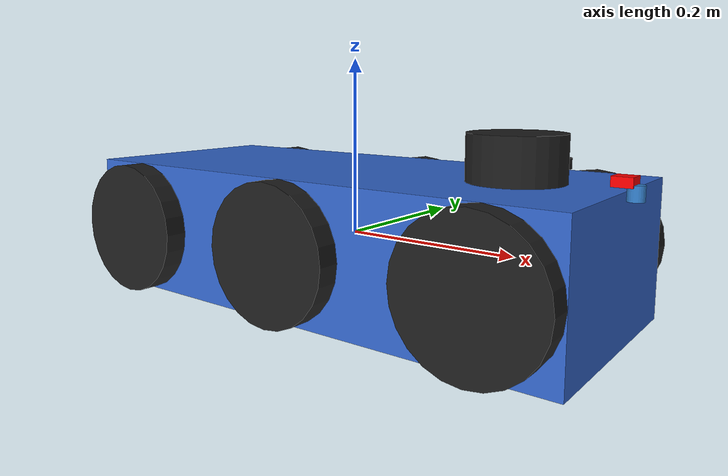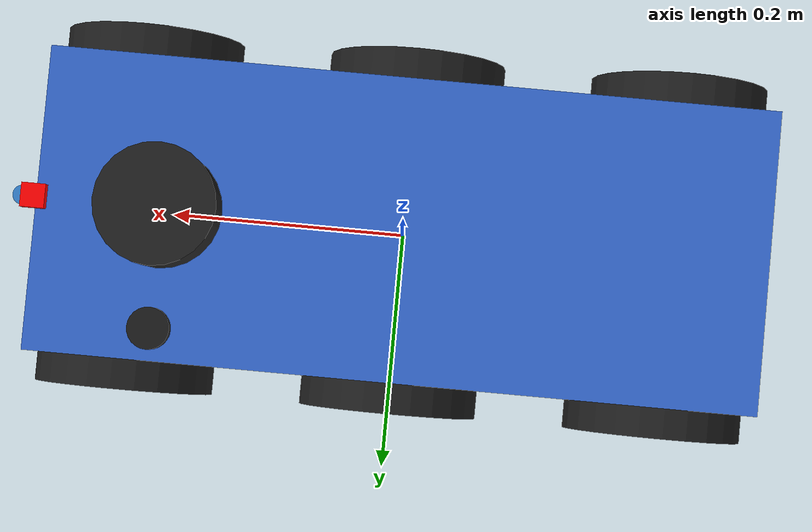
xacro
<?xml version="1.0"?>
<robot name="solara_rover" xmlns:xacro="http://ros.org/wiki/xacro">

  <xacro:property name="front_wheel_x" value="0.2286"/>
  <xacro:property name="rear_wheel_x" value="-0.2286"/>

  <xacro:include filename="$(find rover_description)/urdf/chassis.xacro"/>
  <xacro:include filename="$(find rover_description)/urdf/wheels.xacro"/>
  <xacro:include filename="$(find rover_description)/urdf/sensors/imu.xacro"/>
  <xacro:include filename="$(find rover_description)/urdf/sensors/ultrasonic.xacro"/>
  <xacro:include filename="$(find rover_description)/urdf/sensors/lidar.xacro"/>
  <xacro:include filename="$(find rover_description)/urdf/sensors/gps.xacro"/>

  <!-- Wheels -->
  <xacro:driven_wheel prefix="middle_left" reflect_y="1"/>
  <xacro:driven_wheel prefix="middle_right" reflect_y="-1"/>

  <xacro:passive_wheel prefix="front_left" reflect_y="1" x_position="${front_wheel_x}"/>
  <xacro:passive_wheel prefix="front_right" reflect_y="-1" x_position="${front_wheel_x}"/>
  <xacro:passive_wheel prefix="rear_left" reflect_y="1" x_position="${rear_wheel_x}"/>
  <xacro:passive_wheel prefix="rear_right" reflect_y="-1" x_position="${rear_wheel_x}"/>

  <!-- Sensors (frames only) -->
  <xacro:imu_sensor parent_link="chassis_link">
    <origin xyz="0.3048 0 0.0862" rpy="0 0 0"/>
  </xacro:imu_sensor>

  <xacro:ultrasonic_sensor parent_link="chassis_link">
    <origin xyz="0.3148 0 0.0762" rpy="0 0 0"/>
  </xacro:ultrasonic_sensor>

  <xacro:gps_sensor parent_link="chassis_link">
    <origin xyz="0.2 0.1 0.0862" rpy="0 0 0"/>
  </xacro:gps_sensor>

  <xacro:lidar_sensor parent_link="chassis_link">
    <origin xyz="0.2 0 0.1" rpy="0 0 0"/>
  </xacro:lidar_sensor>

</robot>

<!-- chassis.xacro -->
<robot xmlns:xacro="http://www.ros.org/wiki/xacro">

    <!-- Chassis dimensions in meters -->
    <xacro:property name="chassis_length" value="0.6096"/>  <!-- 24 inches -->
    <xacro:property name="chassis_width" value="0.254"/>    <!-- 10 inches -->
    <xacro:property name="chassis_height" value="0.1524"/>  <!-- 6 inches -->
    <xacro:property name="chassis_mass" value="5.0"/>       <!-- kg, adjust as needed -->

    <link name="chassis_link">
        <!-- Visual representation -->
        <visual>
            <origin xyz="0 0 0" rpy="0 0 0"/>
            <geometry>
                <box size="${chassis_length} ${chassis_width} ${chassis_height}"/>
            </geometry>
            <material name="chassis_blue">
                <color rgba="0.2 0.4 0.8 1.0"/>
            </material>
        </visual>

        <!-- Collision representation -->
        <collision>
            <origin xyz="0 0 0" rpy="0 0 0"/>
            <geometry>
                <box size="${chassis_length} ${chassis_width} ${chassis_height}"/>
            </geometry>
        </collision>

        <!-- Inertial properties -->
        <inertial>
            <origin xyz="0 0 0" rpy="0 0 0"/>
            <mass value="${chassis_mass}"/>
            <inertia
                ixx="${(1/12) * chassis_mass * (chassis_width*chassis_width + chassis_height*chassis_height)}"
                ixy="0.0"
                ixz="0.0"
                iyy="${(1/12) * chassis_mass * (chassis_length*chassis_length + chassis_height*chassis_height)}"
                iyz="0.0"
                izz="${(1/12) * chassis_mass * (chassis_length*chassis_length + chassis_width*chassis_width)}"/>
        </inertial>
    </link>

</robot>

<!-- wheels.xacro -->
<robot xmlns:xacro="http://ros.org/wiki/xacro">

  <!-- Driven wheel macro (middle wheels with motors) -->
<xacro:macro name="driven_wheel" params="prefix reflect_y">
    <!-- #defining pi -->
    <xacro:property name="pi" value="3.141592653589793"/>
    <link name="${prefix}_wheel_link">
      <visual>
        <origin xyz="0 0 0" rpy="${pi/2} 0 0"/>
        <geometry>
          <cylinder radius="0.0762" length="0.0508"/>
        </geometry>
        <material name="black"/>
      </visual>

      <collision>
        <origin xyz="0 0 0" rpy="${pi/2} 0 0"/>
        <geometry>
          <cylinder radius="0.0762" length="0.0508"/>
        </geometry>
      </collision>

      <inertial>
        <mass value="1.5"/>
        <origin xyz="0 0 0" rpy="${pi/2} 0 0"/>
        <inertia
          ixx="${(1/12) * 1.5 * (3*0.0762*0.0762 + 0.0508*0.0508)}"
          iyy="${(1/12) * 1.5 * (3*0.0762*0.0762 + 0.0508*0.0508)}"
          izz="${0.5 * 1.5 * 0.0762*0.0762}"
          ixy="0.0" ixz="0.0" iyz="0.0"/>
      </inertial>
    </link>

    <joint name="${prefix}_wheel_joint" type="continuous">
      <parent link="chassis_link"/>
      <child link="${prefix}_wheel_link"/>
      <origin xyz="0 ${reflect_y * 0.127} 0" rpy="0 0 0"/>
      <axis xyz="0 1 0"/>
      <dynamics damping="0.2" friction="0.1"/>
    </joint>

  </xacro:macro>

  <!-- Passive wheel macro (front and rear, just rolls) -->
  <xacro:macro name="passive_wheel" params="prefix reflect_y x_position">

    <link name="${prefix}_wheel_link">
      <visual>
        <origin xyz="0 0 0" rpy="${pi/2} 0 0"/>
        <geometry>
          <cylinder radius="0.0762" length="0.0508"/>
        </geometry>
        <material name="black"/>
      </visual>

      <collision>
        <origin xyz="0 0 0" rpy="${pi/2} 0 0"/>
        <geometry>
          <cylinder radius="0.0762" length="0.0508"/>
        </geometry>
      </collision>

      <inertial>
        <mass value="1.0"/>
        <origin xyz="0 0 0" rpy="${pi/2} 0 0"/>
        <inertia
          ixx="${(1/12) * 1.0 * (3*0.0762*0.0762 + 0.0508*0.0508)}"
          iyy="${(1/12) * 1.0 * (3*0.0762*0.0762 + 0.0508*0.0508)}"
          izz="${0.5 * 1.0 * 0.0762*0.0762}"
          ixy="0.0" ixz="0.0" iyz="0.0"/>
      </inertial>
    </link>

  <joint name="${prefix}_wheel_joint" type="continuous">
    <parent link="chassis_link"/>
    <child link="${prefix}_wheel_link"/>
    <origin xyz="${x_position} ${reflect_y * 0.127} 0" rpy="0 0 0"/>
    <axis xyz="0 1 0"/>
    <dynamics damping="0.1" friction="0.05"/>
  </joint>

  </xacro:macro>

</robot>

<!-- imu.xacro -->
<robot xmlns:xacro="http://www.ros.org/wiki/xacro">

    <xacro:macro name="imu_sensor" params="parent_link *origin">

        <link name="imu_link">
            <visual>
                <origin xyz="0 0 0" rpy="0 0 0"/>
                <geometry>
                    <box size="0.02 0.02 0.01"/>
                </geometry>
                <material name="imu_red">
                    <color rgba="1.0 0.0 0.0 1.0"/>
                </material>
            </visual>

            <collision>
                <origin xyz="0 0 0" rpy="0 0 0"/>
                <geometry>
                    <box size="0.02 0.02 0.01"/>
                </geometry>
            </collision>

           <inertial>
                <mass value="0.5"/>
                <origin xyz="0 0 0" rpy="0 0 0"/>
                <inertia ixx="0.0001" ixy="0.0" ixz="0.0"
                        iyy="0.0001" iyz="0.0"
                        izz="0.0001"/>
            </inertial>
        </link>

        <joint name="imu_joint" type="fixed">
            <parent link="${parent_link}"/>
            <child link="imu_link"/>
            <xacro:insert_block name="origin"/>
        </joint>

    </xacro:macro>

</robot>

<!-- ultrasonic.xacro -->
<robot xmlns:xacro="http://ros.org/wiki/xacro">
    <!-- Ultrasonic Sensor Macro (HC-SR04) -->
    <xacro:macro name="ultrasonic_sensor" params="parent_link *origin">
        <link name="ultrasonic_link">
        <visual>
            <origin xyz="0 0 0" rpy="0 0 0"/>
            <geometry>
                <cylinder radius="0.008" length="0.015"/>  <!-- 8mm radius, 15mm tall -->
            </geometry>
            <material name="ultrasonic_blue">
                <color rgba="0.2 0.5 0.8 1.0"/>
            </material>
        </visual>
        <collision>
            <origin xyz="0 0 0" rpy="0 0 0"/>
            <geometry>
                <cylinder radius="0.008" length="0.015"/>
            </geometry>
        </collision>

        <inertial>
            <mass value="0.5"/>
            <origin xyz="0 0 0" rpy="0 0 0"/>
            <inertia ixx="0.0001" ixy="0.0" ixz="0.0"
                    iyy="0.0001" iyz="0.0"
                    izz="0.0001"/>
        </inertial>
    </link>

    <joint name="ultrasonic_joint" type="fixed">
        <parent link="${parent_link}"/>
        <child link="ultrasonic_link"/>
        <xacro:insert_block name="origin"/>
    </joint>
    </xacro:macro>
</robot>

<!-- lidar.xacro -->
<robot xmlns:xacro="http://www.ros.org/wiki/xacro">

    <xacro:macro name="lidar_sensor" params="parent_link *origin">

        <link name="lidar_link">
            <visual>
                <origin xyz="0 0 0" rpy="0 0 0"/>
                <geometry>
                    <cylinder radius="0.05" length="0.05"/>
                </geometry>
                <material name="black"/>
            </visual>

            <collision>
                <origin xyz="0 0 0" rpy="0 0 0"/>
                <geometry>
                    <cylinder radius="0.05" length="0.05"/>
                </geometry>
            </collision>

           <inertial>
                <mass value="0.5"/>
                <origin xyz="0 0 0" rpy="0 0 0"/>
                <inertia ixx="0.0001" ixy="0.0" ixz="0.0"
                        iyy="0.0001" iyz="0.0"
                        izz="0.0001"/>
            </inertial>
        </link>

        <joint name="lidar_joint" type="fixed">
            <parent link="${parent_link}"/>
            <child link="lidar_link"/>
            <xacro:insert_block name="origin"/>
        </joint>

    </xacro:macro>

</robot>

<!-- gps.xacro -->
<robot xmlns:xacro="http://ros.org/wiki/xacro">
<!-- GPS Sensor Macro (NEO-M8N) -->
<xacro:macro name="gps_sensor" params="parent_link *origin">

<!-- GPS Link -->
<link name="gps_link">
    <!-- Visual: Circular GPS module (NEO-M8N with integrated antenna) -->
    <visual>
        <origin xyz="0 0 0" rpy="0 0 0"/>
        <geometry>
            <cylinder radius="0.0175" length="0.012"/>  <!-- 35mm diameter, 12mm tall -->
        </geometry>
        <material name="gps_black">
            <color rgba="0.1 0.1 0.1 1.0"/>
        </material>
    </visual>

    <collision>
        <origin xyz="0 0 0" rpy="0 0 0"/>
        <geometry>
            <cylinder radius="0.0175" length="0.012"/>
        </geometry>
    </collision>

    <inertial>
        <mass value="0.5"/>
        <origin xyz="0 0 0" rpy="0 0 0"/>
        <inertia ixx="0.0001" ixy="0.0" ixz="0.0"
                iyy="0.0001" iyz="0.0"
                izz="0.0001"/>
    </inertial>
</link>

<joint name="gps_joint" type="fixed">
    <parent link="${parent_link}"/>
    <child link="gps_link"/>
    <xacro:insert_block name="origin"/>
</joint>

</xacro:macro>
</robot>
